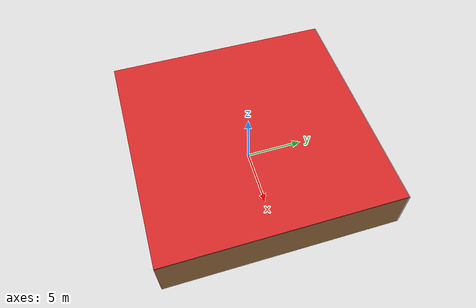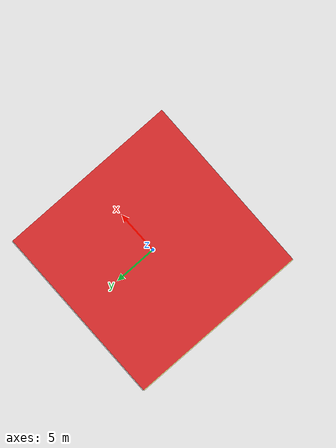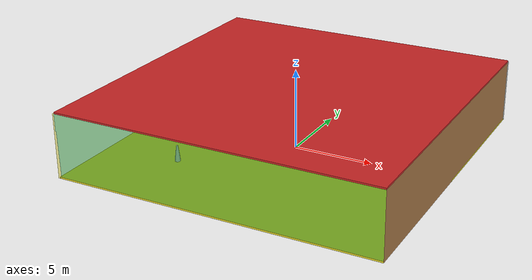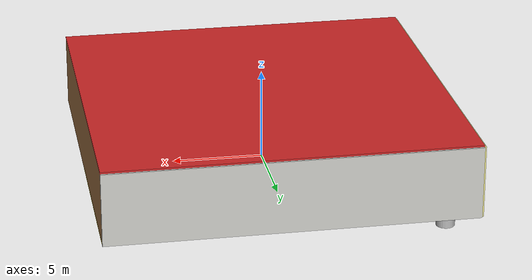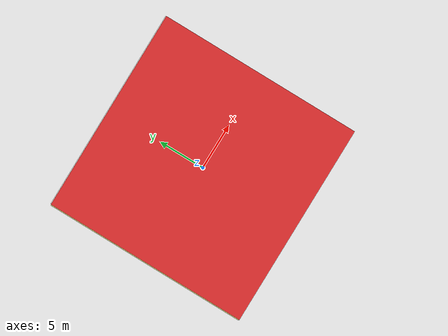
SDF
<sdf version="1.4">
 <world name="default">
  <physics type="ode">
   <max_step_size>0.001</max_step_size>
   <real_time_factor>1</real_time_factor>
   <real_time_update_rate>1000</real_time_update_rate>
   <gravity>0 0 -9.8</gravity>
  </physics>
  <scene><ambient>0.4 0.4 0.4 1</ambient><background>0.7 0.7 0.7 1</background><shadows>1</shadows></scene>
  <model name="Surrounding">
   <static>1</static>
   <link name="Ceiling">
    <collision name="Ceiling_Collision"><geometry><box><size>20 20 0.1</size></box></geometry></collision>
    <visual name="Ceiling_Visual">
     <geometry><box><size>20 20 0.1</size></box></geometry>
     <material>
      <script><uri>file://media/materials/scripts/gazebo.material</uri><name>Gazebo/RedBright</name></script>
     </material>
    </visual>
    <pose>0 0 4.05 0 0 0</pose>
   </link>
   <link name="Wall_South">
    <collision name="Wall_South_Collision">
     <geometry><box><size>20 0 4</size></box></geometry>
     <pose>0 0 2 0 -0 0</pose>
    </collision>
    <visual name="Wall_South_Visual">
     <pose>0 0 2 0 -0 0</pose>
     <geometry><box><size>20 0 4</size></box></geometry>
     <material>
      <script><uri>file://media/materials/scripts/gazebo.material</uri><name>Gazebo/GreenTransparent</name></script>
     </material>
    </visual>
    <velocity_decay><linear>0</linear><angular>0</angular></velocity_decay>
    <pose>0 -10 0 0 -0 0</pose>
   </link>
   <link name="Wall_East">
    <collision name="Wall_21_Collision">
     <geometry><box><size>20 0 4</size></box></geometry>
     <pose>0 0 2 0 -0 0</pose>
    </collision>
    <visual name="Wall_21_Visual">
     <pose>0 0 2 0 -0 0</pose>
     <geometry><box><size>20 0 4</size></box></geometry>
     <material>
      <script><uri>file://media/materials/scripts/gazebo.material</uri><name>Gazebo/Wood</name></script>
     </material>
    </visual>
    <velocity_decay><linear>0</linear><angular>0</angular></velocity_decay>
    <pose>10 0 0 0 -0 1.5708</pose>
   </link>
   <link name="Wall_North">
    <collision name="Wall_22_Collision">
     <geometry><box><size>20 0.2 4</size></box></geometry>
     <pose>0 0 2 0 -0 0</pose>
    </collision>
    <visual name="Wall_22_Visual">
     <pose>0 0 2 0 -0 0</pose>
     <geometry><box><size>20 0.2 4</size></box></geometry>
     <material>
      <script><uri>file://media/materials/scripts/gazebo.material</uri><name>Gazebo/CeilingTiled</name></script>
     </material>
    </visual>
    <velocity_decay><linear>0</linear><angular>0</angular></velocity_decay>
    <pose>0 10 0 0 -0 0</pose>
   </link>
   <link name="Wall_West">
    <collision name="Wall_23_Collision">
     <geometry><box><size>20 0.2 4</size></box></geometry>
     <pose>0 0 2 0 -0 0</pose>
    </collision>
    <visual name="Wall_23_Visual">
     <pose>0 0 2 0 -0 0</pose>
     <geometry><box><size>20 0.2 4</size></box></geometry>
     <material>
      <script>
       <uri>file://media/materials/scripts/gazebo.material</uri>
       <name>Gazebo/YellowTransparent</name>
      </script>
     </material>
    </visual>
    <velocity_decay><linear>0</linear><angular>0</angular></velocity_decay>
    <pose>-10 0 0 0 0 -1.5708</pose>
   </link>
   <link name="Ground_link">
    <collision name="collision">
     <pose>0 0 .05 0 -0 0</pose>
     <geometry><box><size>20 20 0.1</size></box></geometry>
    </collision>
    <visual name="visual">
     <pose>0 0 .05 0 -0 0</pose>
     <geometry><box><size>20 20 0.1</size></box></geometry>
     <material>
      <script><uri>file://media/materials/scripts/gazebo.material</uri><name>Gazebo/YellowGlow</name></script>
     </material>
    </visual>
   </link>
   <static>1</static>
  </model>
  <spherical_coordinates>
   <surface_model>EARTH_WGS84</surface_model>
   <latitude_deg>0</latitude_deg>
   <longitude_deg>0</longitude_deg>
   <elevation>0</elevation>
   <heading_deg>0</heading_deg>
  </spherical_coordinates>
  <light name="lightball_0" type="diffuse">
   <diffuse>0.8 0.8 0.8 1</diffuse>
   <specular>0.2 0.2 0.2 1</specular>
   <attenuation>
    <range>100</range>
    <constant>0.7</constant>
    <linear>0.01</linear>
    <quadratic>0.001</quadratic>
   </attenuation>
   <direction>-0.5 0.1 -0.9</direction>
   <pose>1.39740105802 -5.63309393609 2.43614201236 0 0 0</pose>
  </light>
  <light name="lightball_1" type="diffuse">
   <diffuse>0.8 0.8 0.8 1</diffuse>
   <specular>0.2 0.2 0.2 1</specular>
   <attenuation>
    <range>100</range>
    <constant>0.7</constant>
    <linear>0.01</linear>
    <quadratic>0.001</quadratic>
   </attenuation>
   <direction>-0.5 0.1 -0.9</direction>
   <pose>-8.96912514802 -8.00934867204 3.86074289776 0 0 0</pose>
  </light>
  <light name="lightball_2" type="diffuse">
   <diffuse>0.8 0.8 0.8 1</diffuse>
   <specular>0.2 0.2 0.2 1</specular>
   <attenuation>
    <range>100</range>
    <constant>0.7</constant>
    <linear>0.01</linear>
    <quadratic>0.001</quadratic>
   </attenuation>
   <direction>-0.5 0.1 -0.9</direction>
   <pose>6.54952172697 6.61861308343 2.62721251752 0 0 0</pose>
  </light>
  <light name="lightball_3" type="diffuse">
   <diffuse>0.8 0.8 0.8 1</diffuse>
   <specular>0.2 0.2 0.2 1</specular>
   <attenuation>
    <range>100</range>
    <constant>0.7</constant>
    <linear>0.01</linear>
    <quadratic>0.001</quadratic>
   </attenuation>
   <direction>-0.5 0.1 -0.9</direction>
   <pose>-6.11044340165 -7.84380022894 2.20321630038 0 0 0</pose>
  </light>
  <light name="lightball_4" type="diffuse">
   <diffuse>0.8 0.8 0.8 1</diffuse>
   <specular>0.2 0.2 0.2 1</specular>
   <attenuation>
    <range>100</range>
    <constant>0.7</constant>
    <linear>0.01</linear>
    <quadratic>0.001</quadratic>
   </attenuation>
   <direction>-0.5 0.1 -0.9</direction>
   <pose>-8.88299593355 2.54786678299 1.06882561897 0 0 0</pose>
  </light>
  <light name="lightball_5" type="diffuse">
   <diffuse>0.8 0.8 0.8 1</diffuse>
   <specular>0.2 0.2 0.2 1</specular>
   <attenuation>
    <range>100</range>
    <constant>0.7</constant>
    <linear>0.01</linear>
    <quadratic>0.001</quadratic>
   </attenuation>
   <direction>-0.5 0.1 -0.9</direction>
   <pose>7.63033329381 5.4073115819 3.68540236161 0 0 0</pose>
  </light>
  <include>
   <uri>model://textured_shapes</uri>
   <pose>-7.75115964755 8.08556949395 0 0 0 0.276818851917</pose>
  </include>
  <include>
   <uri>model://construction_cone</uri>
   <pose>-5.22517169214 -5.09680293179 0 0 0 1.40121807058</pose>
  </include>
  <include>
   <uri>model://construction_cone</uri>
   <pose>-5.25287764132 -1.12021900814 0 0 0 1.85896256716</pose>
  </include>
  <include><uri>model://table</uri><pose>-1.83578675841 2.25631671097 0 0 0 1.37105800064</pose></include>
 </world>
</sdf>

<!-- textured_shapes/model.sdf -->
<sdf version="1.6">
  <model name="textured_shapes">
    <pose>0 0 0.5 0 0 0</pose>
    <link name="box">
      <pose>0 -1.5 0 0 0 0</pose>
      <collision name="collision">
        <geometry>
          <box>
            <size>1 1 1</size>
          </box>
        </geometry>
      </collision>
      <visual name="visual">
        <geometry>
          <box>
            <size>1 1 1</size>
          </box>
        </geometry>
        <material>
          <script>
            <uri>model://../model_source/models/textured_shapes/materials/scripts</uri>
            <uri>model://../model_source/models/textured_shapes/materials/textures</uri>
            <name>TexturedShape/Squares</name>
          </script>
        </material>
      </visual>
    </link>
    <link name="sphere">
      <collision name="collision">
        <geometry>
          <sphere>
            <radius>0.5</radius>
          </sphere>
        </geometry>
      </collision>
      <visual name="visual">
        <geometry>
          <sphere>
            <radius>0.5</radius>
          </sphere>
        </geometry>
        <material>
          <script>
            <uri>model://../model_source/models/textured_shapes/materials/scripts</uri>
            <uri>model://../model_source/models/textured_shapes/materials/textures</uri>
            <name>TexturedShape/Squares</name>
          </script>
        </material>
      </visual>
    </link>
    <link name="cylinder">
      <pose>0 1.5 0 0 0 0</pose>
      <collision name="collision">
        <geometry>
          <cylinder>
            <radius>0.5</radius>
            <length>1</length>
          </cylinder>
        </geometry>
      </collision>
      <visual name="visual">
        <geometry>
          <cylinder>
            <radius>0.5</radius>
            <length>1</length>
          </cylinder>
        </geometry>
        <material>
          <script>
            <uri>model://../model_source/models/textured_shapes/materials/scripts</uri>
            <uri>model://../model_source/models/textured_shapes/materials/textures</uri>
            <name>TexturedShape/Squares</name>
          </script>
        </material>
      </visual>
    </link>
  </model>
</sdf>

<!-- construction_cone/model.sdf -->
<sdf version="1.5">
  <model name="Construction Cone">
    <link name="link">
      <collision name="collision">
        <geometry>
          <mesh>
            <scale>10 10 10</scale>
            <uri>file://isr-testbed/construction_cone/meshes/construction_cone.dae</uri>
          </mesh>
        </geometry>
      </collision>
      <visual name="visual">
        <geometry>
          <mesh>
            <scale>10 10 10</scale>
            <uri>file://isr-testbed/construction_cone/meshes/construction_cone.dae</uri>
          </mesh>
        </geometry>
      </visual>
    </link>
  </model>
</sdf>

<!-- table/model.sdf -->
<sdf version="1.5">
  <model name="table">
    <static>true</static>
    <link name="link">
      <collision name="surface">
        <pose>0 0 1.0 0 0 0</pose>
        <geometry>
          <box>
            <size>1.5 0.8 0.03</size>
          </box>
        </geometry>
        <surface>
          <friction>
            <ode>
              <mu>0.6</mu>
              <mu2>0.6</mu2>
            </ode>
          </friction>
        </surface>
      </collision>
      <visual name="visual1">
        <pose>0 0 1.0 0 0 0</pose>
        <geometry>
          <box>
            <size>1.5 0.8 0.03</size>
          </box>
        </geometry>
        <material>
          <script>
            <uri>model://media/materials/scripts/gazebo.material</uri>
            <name>Gazebo/Wood</name>
          </script>
        </material>
      </visual>
      <collision name="front_left_leg">
        <pose>0.68 0.38 0.5 0 0 0</pose>
        <geometry>
          <cylinder>
            <radius>0.02</radius>
            <length>1.0</length>
          </cylinder>
        </geometry>
      </collision>
      <visual name="front_left_leg">
        <pose>0.68 0.38 0.5 0 0 0</pose>
        <geometry>
          <cylinder>
            <radius>0.02</radius>
            <length>1.0</length>
          </cylinder>
        </geometry>
        <material>
          <script>
            <uri>model://media/materials/scripts/gazebo.material</uri>
            <name>Gazebo/Grey</name>
          </script>
        </material>
      </visual>
      <collision name="front_right_leg">
        <pose>0.68 -0.38 0.5 0 0 0</pose>
        <geometry>
          <cylinder>
            <radius>0.02</radius>
            <length>1.0</length>
          </cylinder>
        </geometry>
      </collision>
      <visual name="front_right_leg">
        <pose>0.68 -0.38 0.5 0 0 0</pose>
        <geometry>
          <cylinder>
            <radius>0.02</radius>
            <length>1.0</length>
          </cylinder>
        </geometry>
        <material>
          <script>
            <uri>model://media/materials/scripts/gazebo.material</uri>
            <name>Gazebo/Grey</name>
          </script>
        </material>
      </visual>
      <collision name="back_right_leg">
        <pose>-0.68 -0.38 0.5 0 0 0</pose>
        <geometry>
          <cylinder>
            <radius>0.02</radius>
            <length>1.0</length>
          </cylinder>
        </geometry>
      </collision>
      <visual name="back_right_leg">
        <pose>-0.68 -0.38 0.5 0 0 0</pose>
        <geometry>
          <cylinder>
            <radius>0.02</radius>
            <length>1.0</length>
          </cylinder>
        </geometry>
        <material>
          <script>
            <uri>model://media/materials/scripts/gazebo.material</uri>
            <name>Gazebo/Grey</name>
          </script>
        </material>
      </visual>
      <collision name="back_left_leg">
        <pose>-0.68 0.38 0.5 0 0 0</pose>
        <geometry>
          <cylinder>
            <radius>0.02</radius>
            <length>1.0</length>
          </cylinder>
        </geometry>
      </collision>
      <visual name="back_left_leg">
        <pose>-0.68 0.38 0.5 0 0 0</pose>
        <geometry>
          <cylinder>
            <radius>0.02</radius>
            <length>1.0</length>
          </cylinder>
        </geometry>
        <material>
          <script>
            <uri>model://media/materials/scripts/gazebo.material</uri>
            <name>Gazebo/Grey</name>
          </script>
        </material>
      </visual>
    </link>
  </model>
</sdf>
